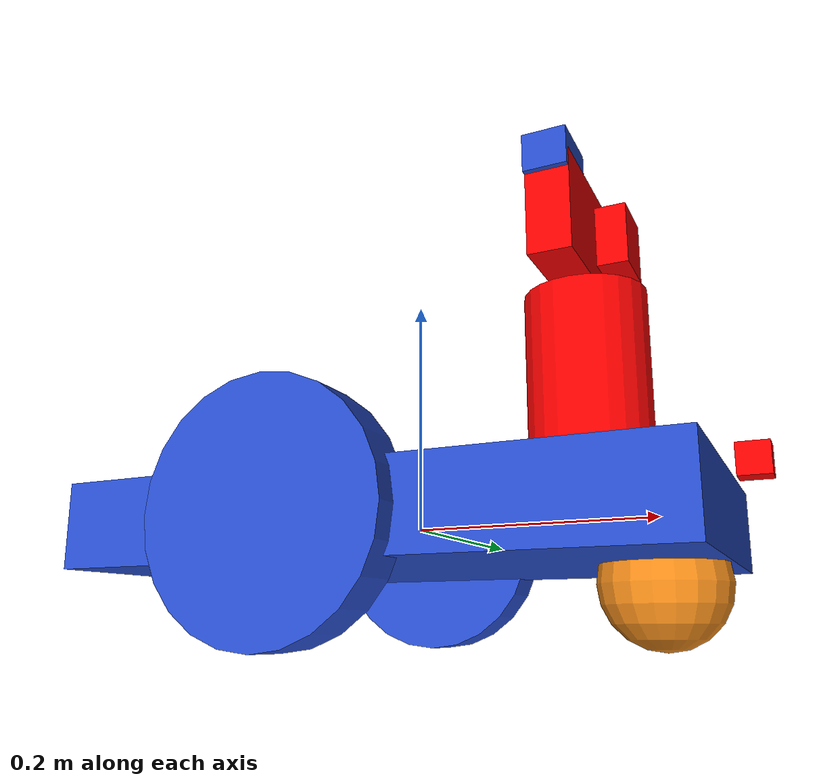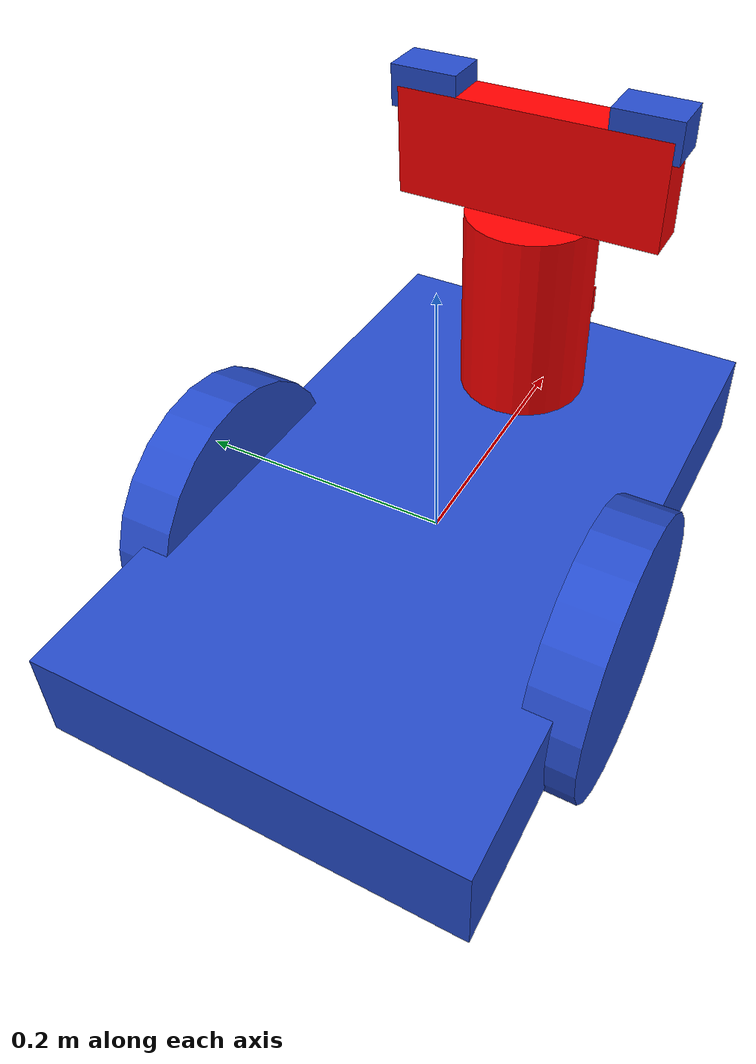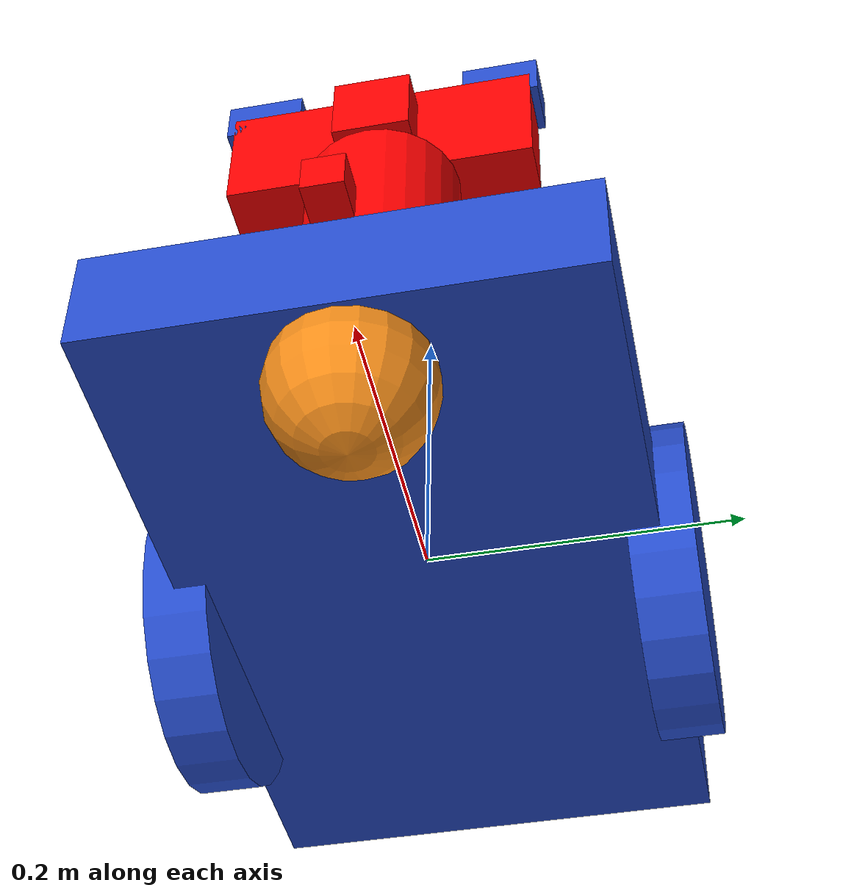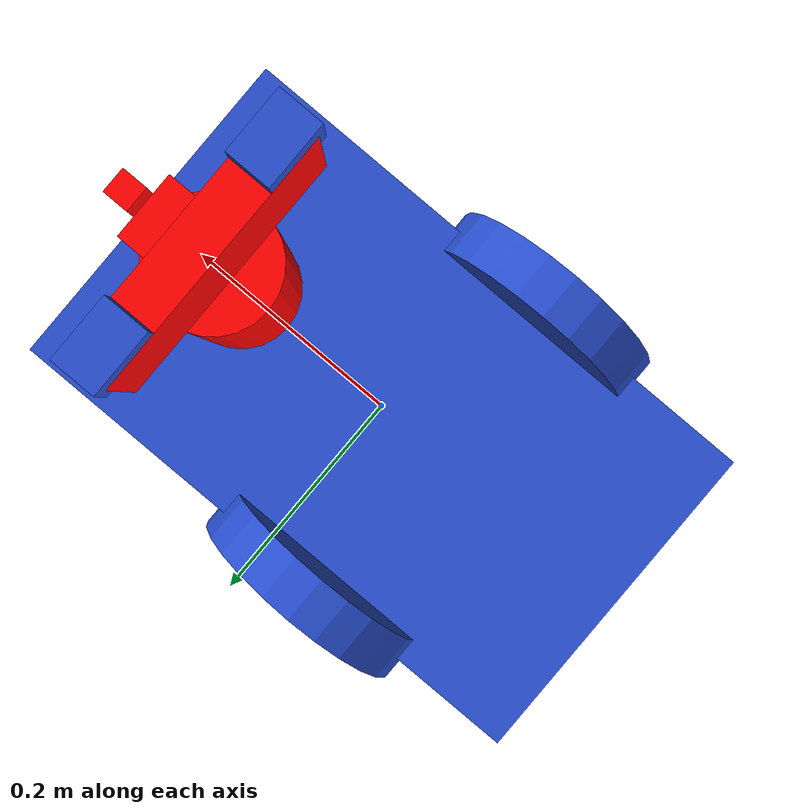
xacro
<?xml version="1.0" ?>
<robot name="robotDog" xmlns:xacro="https://www.ros.org/wiki/xacro" >

 <xacro:include filename="$(find final_assignment)/urdf/materials.xacro" />
 <xacro:include filename="$(find final_assignment)/urdf/robotDog.gazebo" />
 <xacro:property name="chassis_length" value="0.5" />
 <xacro:property name="chassis_width" value="0.3" />
 <xacro:property name="chassis_height" value="0.07" />
 <xacro:property name="chassis_mass" value="6" />
 <xacro:property name="length_wheel" value="0.04" />
 <xacro:property name="radius_wheel" value="0.1" />
 <xacro:property name="neck_length" value="0.15" />
 <xacro:property name="neck_radius" value="0.05" />
 <xacro:property name="camera_link" value="0.05" /> <!-- Size of square 'camera' box -->

 <xacro:macro name="cylinder_inertia" params="mass r l">
    <inertia ixx="${mass*(3*r*r+l*l)/12}" ixy = "0" ixz = "0"
                iyy="${mass*(3*r*r+l*l)/12}" iyz = "0" izz="${mass*(r*r)/2}" />
 </xacro:macro>

 <xacro:macro name="box_inertia" params="mass w h d">
    <inertia ixx="${mass*(h*h+d*d)/12}" ixy = "0" ixz = "0"
                iyy="${mass*(w*w+d*d)/12}" iyz = "0" izz="${mass*(w*w+h*h)/12}" />
 </xacro:macro>

 <xacro:macro name="link_ear" params="name">
   <link name="${name}">
            <inertial>
              <mass value="0.1"/>
              <origin rpy="0 0 0" xyz="0 0 0"/>
	      <xacro:box_inertia mass="0.1" w="0.05" h="0.03" d="0.034"/>
            </inertial>
            <collision name="${name}_collision">
              <origin rpy="0 0 1.5708" xyz="0 0 0"/>
              <geometry>
                <box size="0.034 0.05 0.03"/>
              </geometry>
            </collision>
            <visual name="${name}_visual">
              <origin rpy="0 0 0" xyz="0 0 0"/>
              <geometry>
                <box size="0.034 0.05 0.03"/>
              </geometry>
		<material name="blue" />
            </visual>
        </link>
 </xacro:macro>

    <xacro:macro name="joint_ear" params="name child origin_xyz">
      <joint name="${name}" type="fixed">
        <origin rpy="0 0 0" xyz="${origin_xyz}"/>
        <child link="${child}"/>
        <parent link="head_link"/>
        <axis rpy="0 0 0" xyz="0 0 1"/>
        <limit effort="10000" velocity="1000"/>
        <joint_properties damping="1.0" friction="1.0"/>
      </joint>
    </xacro:macro>

    <xacro:macro name="link_wheel" params="name">
        <link name="${name}">
            <inertial>
              <mass value="0.2"/>
              <origin rpy="0 1.5707 1.5707" xyz="0 0 0"/>
	      <xacro:cylinder_inertia mass="0.2" r="${radius_wheel}" l="${length_wheel}" />
            </inertial>
            <collision name="link_right_wheel_collision">
              <origin rpy="0 1.5707 1.5707" xyz="0 0 0"/>
              <geometry>
                <cylinder length="${length_wheel}" radius="${radius_wheel}"/>
              </geometry>
            </collision>
            <visual name="${name}_visual">
              <origin rpy="0 1.5707 1.5707" xyz="0 0 0"/>
              <geometry>
                <cylinder length="${length_wheel}" radius="${radius_wheel}"/>
              </geometry>
            </visual>
        </link>
    </xacro:macro>

    <xacro:macro name="joint_wheel" params="name child origin_xyz">
      <joint name="${name}" type="continuous">
        <origin rpy="0 0 0" xyz="${origin_xyz}"/>
        <child link="${child}"/>
        <parent link="link_chassis"/>
        <axis rpy="0 0 0" xyz="0 1 0"/>
        <limit effort="10000" velocity="1000"/>
        <joint_properties damping="1.0" friction="1.0"/>
      </joint>
    </xacro:macro>

<!-- _______________base link____________________  -->

  <link name="link_chassis">
    <!-- pose and inertial -->
    <pose>0 0 0.1 0 0 0</pose>

    <inertial>
      <mass value="5"/>
      <origin rpy="0 0 0" xyz="0 0 0.1"/>
      <xacro:box_inertia mass="${chassis_mass}" w="${chassis_length}" h="${chassis_width}" d="${chassis_height}"/>
    </inertial>

    <collision name="collision_chassis">
      <geometry>
        <box size="${chassis_length} ${chassis_width} ${chassis_height}"/>
      </geometry>
    </collision>

    <visual>
      <origin rpy="0 0 0" xyz="0 0 0"/>
      <geometry>
        <box size="${chassis_length} ${chassis_width} ${chassis_height}"/>
      </geometry>
      <material name="blue"/>
    </visual>

    <!-- caster front -->
    <collision name="caster_front_collision">
      <origin rpy=" 0 0 0" xyz="0.35 0 -0.05"/>
      <geometry>
        <sphere radius="0.05"/>
      </geometry>
      <surface>
        <friction>
          <ode>
            <mu>0</mu>
            <mu2>0</mu2>
            <slip1>1.0</slip1>
            <slip2>1.0</slip2>
          </ode>
        </friction>
      </surface>
    </collision>
    <visual name="caster_front_visual">
      <origin rpy=" 0 0 0" xyz="0.2 0 -0.05"/>
      <geometry>
        <sphere radius="0.05"/>
      </geometry>
    </visual>
    </link>

  <!-- Create wheels -->

  <xacro:link_wheel name="link_right_wheel" />
  <xacro:link_wheel name="link_left_wheel" />
  <xacro:joint_wheel name="joint_right_wheel"  child="link_right_wheel"  origin_xyz="-0.05 0.15 0"  />
  <xacro:joint_wheel name="joint_left_wheel"   child="link_left_wheel"   origin_xyz="-0.05 -0.15 0"  />

<!-- _______________neck definition_______________ -->

  <link name="neck_link">
  	<inertial>
  		<mass value="0.3"/>
  		<origin xyz="0 0 0" rpy="0 0 0" />
		<xacro:cylinder_inertia mass="0.2" r="${neck_radius}" l="${neck_length}" />
  	</inertial>
  	<collision>
  	  <origin xyz="0 0 ${neck_length/2}" rpy="0 0 0"/> <!-- frame moved to the base of the cylinder -->
      <geometry>
        <cylinder radius="${neck_radius}" length="${neck_length}"/>
      </geometry>
  	</collision>
  	<visual>
  	  <origin xyz="0 0 ${neck_length/2}" rpy="0 0 0"/> <!-- frame moved to the base of the cylinder -->
      <geometry>
        <cylinder radius="${neck_radius}" length="${neck_length}"/>
      </geometry>
      <material name="red" />
  	</visual>
  </link>

  <joint name="neck_joint" type="fixed">
  	<axis xyz="0 0 1"/>
  	<limit effort="1000.0" lower="-3.14" upper="3.14" velocity="0.2"/>
  	<origin rpy="0 0 0" xyz="0.15 0 0.035"/> <!-- half the height of the base link -->
  	<parent link="link_chassis"/>
  	<child link="neck_link"/>
  </joint>

<!-- head definition -->

    <link name="head_link">
  	<inertial>
  		<mass value="0.1"/>
  		<origin xyz="0 0 0" rpy="0 0 0" />
  		<xacro:box_inertia mass="0.1" w="0.2" h="0.08" d="0.034"/>
  	</inertial>
  	<collision>
  	  <origin xyz="0 0 0.04" rpy="0 0 0"/> <!-- frame moved to the base of the head -->
      <geometry>
        <box size="0.034 0.2 0.08"/>
      </geometry>
  	</collision>
  	<visual>
  	  <origin xyz="0 0 0.04" rpy="0 0 0"/> <!-- frame moved to the base of the head -->
      <geometry>
        <box size="0.034 0.2 0.08"/>
      </geometry>
      <material name="red" />
  	</visual>
  </link>

  <joint name="head_joint" type="fixed">
  	<axis xyz="0 0 1"/>
  	<limit effort="1000.0" lower="-1.8" upper="1.8" velocity="0.5"/>
  	<origin rpy="0 0 0" xyz="0 0 ${neck_length}"/>
  	<parent link="neck_link"/>
  	<child link="head_link"/>
  </joint>

 <!-- Camera -->
  <link name="camera_link">
    <collision>
      <origin xyz="0 0 0" rpy="0 0 0"/>
      <geometry>
    <box size="${camera_link} ${camera_link} ${camera_link}"/>
      </geometry>
    </collision>

    <visual>
      <origin xyz="0 0 0" rpy="0 0 0"/>
      <geometry>
    <box size="${camera_link} ${camera_link} ${camera_link}"/>
      </geometry>
      <material name="red"/>
    </visual>

    <inertial>
      <mass value="1e-5" />
      <origin xyz="0 0 0" rpy="0 0 0"/>
      <inertia ixx="1e-6" ixy="0" ixz="0" iyy="1e-6" iyz="0" izz="1e-6" />
    </inertial>
  </link>

  <joint name="camera_joint" type="fixed">
    <axis xyz="0 1 0" />
    <origin xyz="0.017 0 0.04" rpy="0 0 0"/>
    <parent link="head_link"/>
    <child link="camera_link"/>
  </joint>

<!-- hears definition -->

  <xacro:link_ear name="link_right_ear" />
  <xacro:link_ear name="link_left_ear" />
  <xacro:joint_ear name="joint_right_ear"  child="link_right_ear"  origin_xyz="0 0.08 0.08"  />
  <xacro:joint_ear name="joint_left_ear"   child="link_left_ear"   origin_xyz="0 -0.08 0.08"  />

<link name="hokuyo_link">
	    <collision>
	      <origin xyz="0 0 0.00125" rpy="0 0 0"/>
	      <geometry>
		<box size="0.025 0.025 0.025"/>
	      </geometry>
	    </collision>
	    <visual>
	      <origin xyz="0 0 0.0125" rpy="0 0 0"/>
	      <geometry>
		<box size="0.025 0.025 0.025"/>
	      </geometry>
	      <material name="red">
		<color rgba="1 0 0 1"/>
	      </material>
	    </visual>
	    <inertial>
	      <mass value="1e-5" />
	      <origin xyz="0 0 0" rpy="0 0 0"/>
	      <inertia ixx="1e-6" ixy="0" ixz="0" iyy="1e-6" iyz="0" izz="1e-6" />
	    </inertial>
  </link>

  <joint name="hokuyo_joint" type="fixed">
	    <axis xyz="0 1 0" />
	    <origin xyz="0.27 0 0.025" rpy="0 0 0"/>
	    <parent link="link_chassis"/>
	    <child link="hokuyo_link"/>
	 </joint>

</robot>
